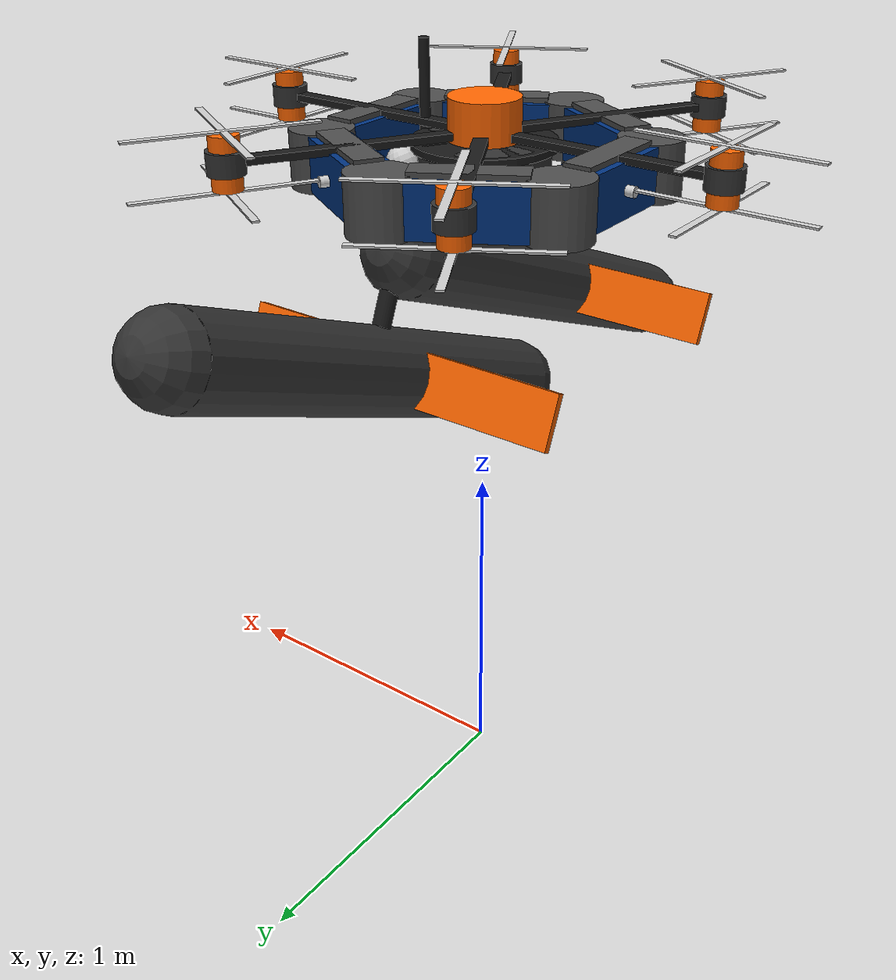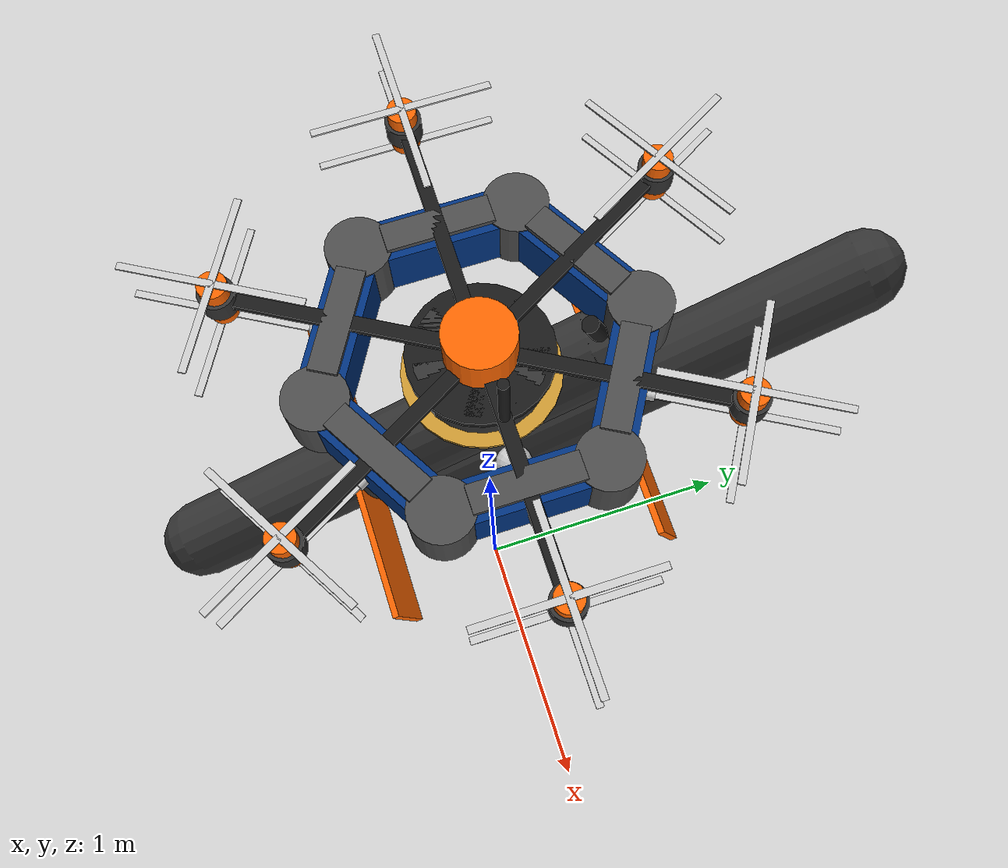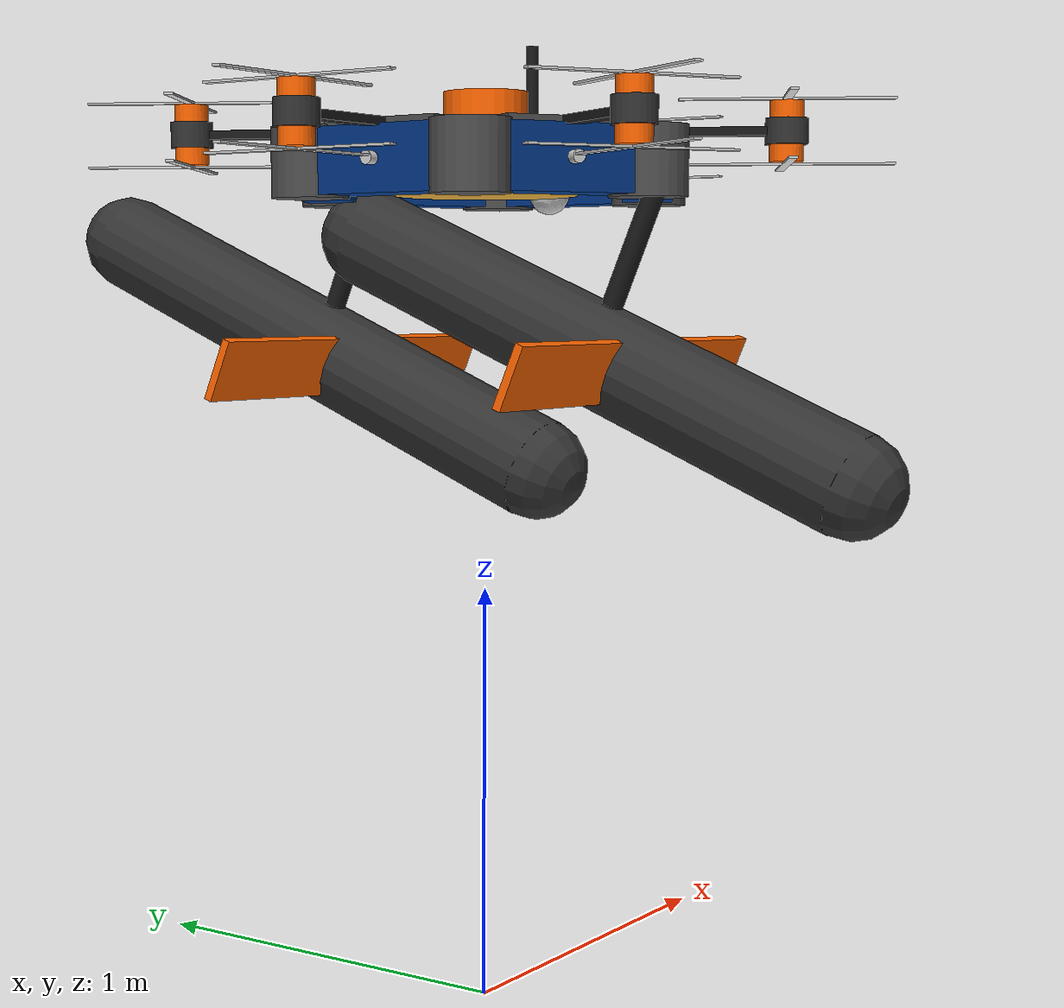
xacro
<?xml version="1.0"?>
<robot xmlns:xacro="http://www.ros.org/wiki/xacro" name="hydro_ring_drone">

    <xacro:property name="arm_length" value="0.6"/>
    <xacro:property name="tank_radius" value="0.45"/>
    <xacro:property name="prop_radius" value="0.25"/>

    <material name="matte_black">
        <color rgba="0.1 0.1 0.1 1.0"/>
    </material>
    <material name="tech_blue"> <color rgba="0.0 0.2 0.5 1.0"/>
    </material>
    <material name="tank_grey"> <color rgba="0.3 0.3 0.3 1.0"/>
    </material>
    <material name="safety_orange">
        <color rgba="1.0 0.4 0.0 1.0"/>
    </material>
    <material name="dark_grey">
        <color rgba="0.2 0.2 0.2 1.0"/>
    </material>
    <material name="silver">
        <color rgba="0.8 0.8 0.8 1.0"/>
    </material>
    <material name="gold"> <color rgba="0.8 0.6 0.2 1.0"/>
    </material>

    <link name="base_footprint"/>

    <joint name="base_joint" type="fixed">
        <parent link="base_footprint"/>
        <child link="base_link"/>
        <origin xyz="0 0 2.0" rpy="0 0 0"/> </joint>

    <link name="base_link">
        <visual>
            <origin xyz="0 0 0.05" rpy="0 0 0"/>
            <geometry><cylinder radius="0.20" length="0.02"/></geometry>
            <material name="matte_black"/>
        </visual>
        <visual>
            <geometry><cylinder radius="0.18" length="0.12"/></geometry>
            <material name="dark_grey"/>
        </visual>
        <visual>
            <origin xyz="0 0 -0.06" rpy="0 0 0"/>
            <geometry><cylinder radius="0.22" length="0.01"/></geometry>
            <material name="gold"/>
        </visual>
        <collision>
            <geometry><cylinder radius="0.25" length="0.15"/></geometry>
        </collision>
    </link>

    <xacro:macro name="tank_segment" params="id angle">
        <link name="tank_seg_${id}">
            <visual>
                <origin xyz="0 0 0" rpy="0 0 0"/>
                <geometry>
                    <box size="0.12 0.45 0.15"/>
                </geometry>
                <material name="tech_blue"/>
            </visual>

            <visual>
                <origin xyz="0 0 0.08" rpy="0 0 0"/>
                <geometry>
                    <box size="0.08 0.3 0.02"/>
                </geometry>
                <material name="tank_grey"/>
            </visual>

            <visual>
                <origin xyz="0.06 0 0" rpy="0 1.5708 0"/>
                <geometry>
                    <cylinder radius="0.015" length="0.05"/>
                </geometry>
                <material name="silver"/>
            </visual>
        </link>

        <joint name="tank_seg_${id}_joint" type="fixed">
            <parent link="base_link"/>
            <child link="tank_seg_${id}"/>
            <origin xyz="${0.38 * cos(angle)} ${0.38 * sin(angle)} 0"
                    rpy="0 0 ${angle}"/>
        </joint>

        <link name="tank_corner_${id}">
            <visual>
                <geometry><cylinder radius="0.09" length="0.16"/></geometry>
                <material name="tank_grey"/>
            </visual>
        </link>
        <joint name="tank_corner_${id}_joint" type="fixed">
            <parent link="base_link"/>
            <child link="tank_corner_${id}"/>
            <origin xyz="${0.44 * cos(angle + 0.523)} ${0.44 * sin(angle + 0.523)} 0"
                    rpy="0 0 0"/>
        </joint>
    </xacro:macro>

    <xacro:tank_segment id="1" angle="0"/>
    <xacro:tank_segment id="2" angle="1.047"/>
    <xacro:tank_segment id="3" angle="2.094"/>
    <xacro:tank_segment id="4" angle="3.141"/>
    <xacro:tank_segment id="5" angle="4.188"/>
    <xacro:tank_segment id="6" angle="5.235"/>

    <xacro:macro name="drone_arm" params="id angle">
        <link name="arm_${id}">
            <visual>
                <geometry>
                    <box size="${arm_length} 0.04 0.02"/>
                </geometry>
                <material name="matte_black"/>
            </visual>
        </link>
        <joint name="arm_${id}_joint" type="fixed">
            <parent link="base_link"/>
            <child link="arm_${id}"/>
            <origin xyz="${(arm_length/2 + 0.1) * cos(angle)} ${(arm_length/2 + 0.1) * sin(angle)} 0.08"
                    rpy="0 0 ${angle}"/>
        </joint>

        <link name="motor_mount_${id}">
            <visual>
                <geometry><cylinder radius="0.05" length="0.06"/></geometry>
                <material name="dark_grey"/>
            </visual>
        </link>
        <joint name="mount_${id}_joint" type="fixed">
            <parent link="arm_${id}"/>
            <child link="motor_mount_${id}"/>
            <origin xyz="${arm_length/2} 0 0" rpy="0 0 0"/>
        </joint>

        <link name="motor_${id}">
            <visual>
                <geometry><cylinder radius="0.04" length="0.14"/></geometry>
                <material name="safety_orange"/>
            </visual>
        </link>
        <joint name="motor_${id}_joint" type="fixed">
            <parent link="motor_mount_${id}"/>
            <child link="motor_${id}"/>
            <origin xyz="0 0 0" rpy="0 0 0"/>
        </joint>

        <link name="prop_top_${id}">
            <visual>
                <geometry><box size="${prop_radius*2} 0.02 0.005"/></geometry>
                <material name="silver"/>
            </visual>
            <visual>
                <origin rpy="0 0 1.5708"/>
                <geometry><box size="${prop_radius*2} 0.02 0.005"/></geometry>
                <material name="silver"/>
            </visual>
        </link>
        <joint name="prop_top_${id}_joint" type="continuous">
            <parent link="motor_${id}"/>
            <child link="prop_top_${id}"/>
            <origin xyz="0 0 0.075" rpy="0 0 0"/>
            <axis xyz="0 0 1"/>
        </joint>

        <link name="prop_bot_${id}">
            <visual>
                <geometry><box size="${prop_radius*2} 0.02 0.005"/></geometry>
                <material name="silver"/>
            </visual>
            <visual>
                <origin rpy="0 0 1.5708"/>
                <geometry><box size="${prop_radius*2} 0.02 0.005"/></geometry>
                <material name="silver"/>
            </visual>
        </link>
        <joint name="prop_bot_${id}_joint" type="continuous">
            <parent link="motor_${id}"/>
            <child link="prop_bot_${id}"/>
            <origin xyz="0 0 -0.075" rpy="0 0 0"/>
            <axis xyz="0 0 1"/>
        </joint>
    </xacro:macro>

    <xacro:drone_arm id="1" angle="0"/>
    <xacro:drone_arm id="2" angle="1.047"/>
    <xacro:drone_arm id="3" angle="2.094"/>
    <xacro:drone_arm id="4" angle="3.141"/>
    <xacro:drone_arm id="5" angle="4.188"/>
    <xacro:drone_arm id="6" angle="5.235"/>

    <xacro:macro name="pontoon" params="side reflect">
        <link name="leg_${side}">
            <visual>
                <geometry><cylinder radius="0.025" length="0.5"/></geometry>
                <material name="matte_black"/>
            </visual>
        </link>
        <joint name="leg_${side}_joint" type="fixed">
            <parent link="base_link"/>
            <child link="leg_${side}"/>
            <origin xyz="0 ${reflect * 0.4} -0.2" rpy="0.4 0 0"/>
        </joint>

        <link name="pontoon_${side}">
            <visual>
                <geometry><capsule radius="0.12" length="1.4"/></geometry>
                <material name="dark_grey"/>
            </visual>
            <visual> <origin xyz="0 0 0.1"/>
                <geometry><box size="1.0 0.15 0.02"/></geometry>
                <material name="safety_orange"/>
            </visual>
        </link>
        <joint name="pontoon_${side}_joint" type="fixed">
            <parent link="leg_${side}"/>
            <child link="pontoon_${side}"/>
            <origin xyz="0 0 -0.25" rpy="1.5708 0 0"/>
        </joint>
    </xacro:macro>

    <xacro:pontoon side="left" reflect="1"/>
    <xacro:pontoon side="right" reflect="-1"/>

    <link name="parachute_link">
        <visual>
            <geometry><cylinder radius="0.1" length="0.15"/></geometry>
            <material name="safety_orange"/>
        </visual>
    </link>
    <joint name="parachute_joint" type="fixed">
        <parent link="base_link"/>
        <child link="parachute_link"/>
        <origin xyz="0 0 0.1" rpy="0 0 0"/>
    </joint>

    <link name="wifi_antenna_link">
        <visual>
            <geometry><cylinder radius="0.015" length="0.3"/></geometry>
            <material name="matte_black"/>
        </visual>
    </link>
    <joint name="wifi_joint" type="fixed">
        <parent link="base_link"/>
        <child link="wifi_antenna_link"/>
        <origin xyz="0.2 0 0.15" rpy="0 0 0"/>
    </joint>

    <link name="thermal_cam_link">
        <visual>
            <geometry><sphere radius="0.05"/></geometry>
            <material name="silver"/>
        </visual>
    </link>
    <joint name="thermal_cam_joint" type="fixed">
        <parent link="base_link"/>
        <child link="thermal_cam_link"/>
        <origin xyz="0.28 0 -0.05" rpy="0 0.5 0"/>
    </joint>

</robot>
